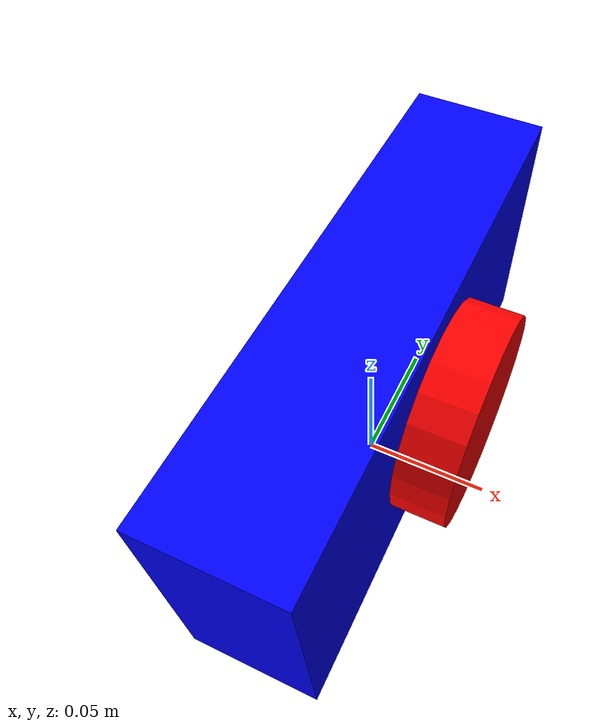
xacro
<?xml version= "1.0" ?>
<robot xmlns:xacro="http://www.ros.org/wiki/xacro" name="camera">

  <xacro:include filename="$(find camera)/description/materials.xacro"/>
  <xacro:include filename="$(find camera)/description/shapes.xacro"/>

  <xacro:property name="camera_length" value="0.05" />
  <xacro:property name="camera_width" value="0.2" />
  <xacro:property name="camera_height" value="0.1" />

  <link name="base_link">
    <xacro:box mass="1" x="${camera_length}" y="${camera_width}" z="${camera_height}" color="blue">
      <origin xyz="0 0 ${camera_height/2}" rpy="0 0 0"/>
    </xacro:box>
  </link>

  <link name="camera_lens">
    <xacro:cylinder_visual radius="${camera_height/2 - 0.01}" height="${0.02}" color="red">
      <origin xyz="0.01 0 0" rpy="${pi/2} 0 ${pi/2} "/>
    </xacro:cylinder_visual>
  </link>

  <joint name="camera_optical_joint" type="fixed">
    <parent link="base_link"/>
    <child link="camera_lens"/>
    <origin xyz="${camera_length/2} 0 ${camera_height/2}" rpy="0 0 0" />
  </joint>

  <gazebo reference="camera_lens">
      <sensor name="camera" type="camera">
        <always_on>1</always_on>
        <topic>camera</topic>
        <visualize>true</visualize>
        <update_rate>10</update_rate>
        <camera>
          <horizontal_fov>1.1</horizontal_fov>
          <image>
            <format>R8G8B8</format>
            <width>640</width>
            <height>480</height>
          </image>
          <clip>
            <near>0.05</near>
            <far>10.0</far>
          </clip>
        </camera>
      </sensor>
  </gazebo>

</robot>

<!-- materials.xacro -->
<robot xmlns:xacro="http://www.ros.org/wiki/xacro">
  <material name='red'>
    <color rgba="1 0 0 1"/>
  </material>

  <material name='blue'>
    <color rgba="0 0 1 1"/>
  </material>

  <material name='green'>
    <color rgba="0 1 0 1"/>
  </material>

  <material name='yellow'>
    <color rgba="1 1 0 1"/>
  </material>

  <material name='purple'>
    <color rgba="1 0 1 1"/>
  </material>

  <material name='orange'>
    <color rgba="0 1 1 1"/>
  </material>

  <material name='white'>
    <color rgba="1 1 1 1"/>
  </material>

  <material name='black'>
    <color rgba="0 0 0 1"/>
  </material>
</robot>

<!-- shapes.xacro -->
<robot xmlns:xacro="http://www.ros.org/wiki/xacro">
  <xacro:macro name="box" params="mass x y z color *origin">
    <inertial>
      <xacro:insert_block name="origin"/>
      <mass value="${mass}" />
      <inertia ixx="${(1/12) * mass * (y*y+z*z)}" ixy="0.0" ixz="0.0"
              iyy="${(1/12) * mass * (x*x+z*z)}" iyz="0.0"
              izz="${(1/12) * mass * (x*x+y*y)}" />
    </inertial>
    <visual>
      <xacro:insert_block name="origin"/>
      <geometry>
        <box size="${x} ${y} ${z}" />
      </geometry>
      <material name="${color}" />
    </visual>
    <collision>
      <xacro:insert_block name="origin"/>
      <geometry>
        <box size="${x} ${y} ${z}" />
      </geometry>
    </collision>
  </xacro:macro>

  <xacro:macro name="box_visual" params="x y z color *origin">
    <visual>
      <xacro:insert_block name="origin"/>
      <geometry>
        <box size="${x} ${y} ${z}" />
      </geometry>
      <material name="${color}" />
    </visual>
    <collision>
      <xacro:insert_block name="origin"/>
      <geometry>
        <box size="${x} ${y} ${z}" />
      </geometry>
    </collision>
  </xacro:macro>

  <xacro:macro name="cylinder" params="mass radius height color *origin">
    <inertial>
      <xacro:insert_block name="origin"/>
      <mass value="${mass}" />
      <inertia ixx="${(1/12) * mass * (3*radius*radius + height*height)}" ixy="0.0" ixz="0.0"
               iyy="${(1/12) * mass * (3*radius*radius + height*height)}" iyz="0.0"
               izz="${(1/2) * mass * radius * radius}" />
    </inertial>
    <visual>
      <xacro:insert_block name="origin"/>
      <geometry>
        <cylinder radius="${radius}" length="${height}" />
      </geometry>
      <material name="${color}" />
    </visual>
    <collision>
      <xacro:insert_block name="origin"/>
      <geometry>
        <cylinder radius="${radius}" length="${height}" />
      </geometry>
    </collision>
  </xacro:macro>

  <xacro:macro name="cylinder_visual" params="radius height color *origin">
    <visual>
      <xacro:insert_block name="origin"/>
      <geometry>
        <cylinder radius="${radius}" length="${height}" />
      </geometry>
      <material name="${color}" />
    </visual>
    <collision>
      <xacro:insert_block name="origin"/>
      <geometry>
        <cylinder radius="${radius}" length="${height}" />
      </geometry>
    </collision>
  </xacro:macro>

  <xacro:macro name="ball" params="mass radius color *origin">
    <inertial>
      <xacro:insert_block name="origin"/>
      <mass value="${mass}" />
      <inertia ixx="${(2/5) * mass * radius * radius}" ixy="0.0" ixz="0.0"
               iyy="${(2/5) * mass * radius * radius}" iyz="0.0"
               izz="${(2/5) * mass * radius * radius}" />
    </inertial>
    <visual>
      <xacro:insert_block name="origin"/>
      <geometry>
        <sphere radius="${radius}" />
      </geometry>
      <material name="${color}" />
    </visual>
    <collision>
      <xacro:insert_block name="origin"/>
      <geometry>
        <sphere radius="${radius}" />
      </geometry>
    </collision>
  </xacro:macro>

  <xacro:macro name="ball_visual" params="radius color *origin">
    <visual>
      <xacro:insert_block name="origin"/>
      <geometry>
        <sphere radius="${radius}" />
      </geometry>
      <material name="${color}" />
    </visual>
    <collision>
      <xacro:insert_block name="origin"/>
      <geometry>
        <sphere radius="${radius}" />
      </geometry>
    </collision>
  </xacro:macro>
</robot>
